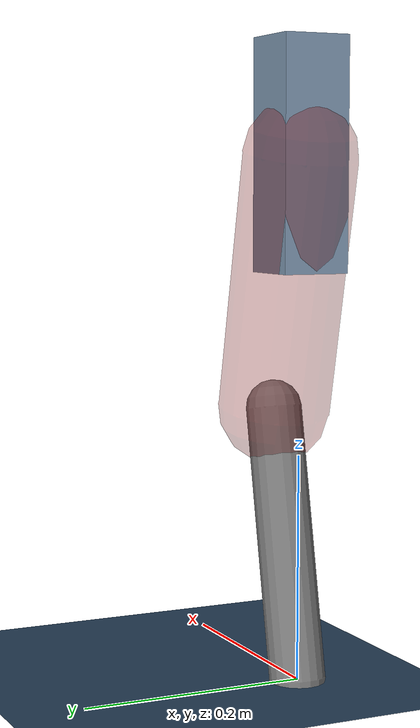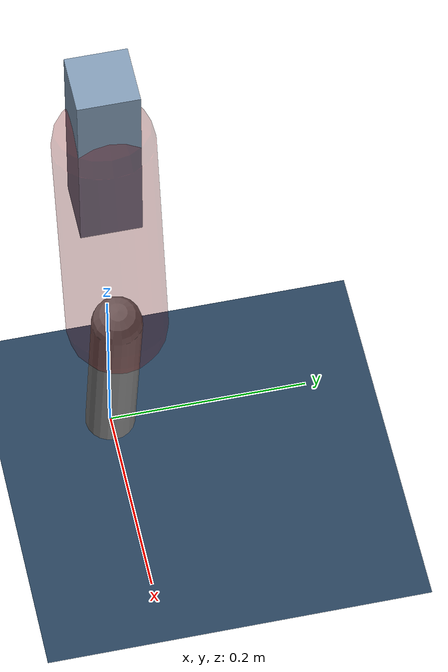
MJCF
<mujoco model="Hopper2D">
	<compiler inertiafromgeom="true" angle="radian" />
	<option timestep="0.001" integrator="implicit" cone="elliptic" solver="Newton" tolerance="1e-10" />

	<default>
		<geom contype="1" conaffinity="1" condim="3" friction="2 0.005 0.0001" solref="0.005 1" />
		<joint limited="true" damping="0.1" />
	</default>

	<asset>
		<texture name="skybox" type="skybox" builtin="gradient" rgb1=".4 .6 .8" rgb2="0 0 0" width="800" height="800" />
		<texture name="grid" type="2d" builtin="checker" rgb1=".1 .2 .3" rgb2=".2 .3 .4" width="300" height="300" mark="edge" markrgb=".2 .3 .4" />
		<material name="ground" texture="grid" texrepeat="1 1" texuniform="true" reflectance="0.1" />
		<material name="leg" rgba="0.5 0.6 0.7 1" />
	</asset>

	<worldbody>

		<geom name="floor" type="plane" size="5 5 0.25" material="ground" />

		<light directional="false" diffuse="0.8 0.8 0.8" specular="0.3 0.3 0.3" pos="0 0 2" dir="0 0 -1" />
		<light mode="targetbodycom" target="base" directional="false" diffuse="0.8 0.8 0.8" specular="0.3 0.3 0.3" pos="0 0 2" dir="0 0 -1" />

		<camera name="fixed" pos="0 -2 1" xyaxes="1 0 0 0 0 1" />
		<camera name="tracking" mode="trackcom" pos="0 -3 1" />

		<body name="root" pos="0 0 0.45905471992279717">
			<joint name="slide_x" type="slide" axis="1 0 0" range="-100 100" />
			<joint name="slide_z" type="slide" axis="0 0 1" range="0 10" />

			<body name="base" pos="0 0 0">
				<geom name="torso" type="box" size="0.03 0.03 0.1" mass="1.947" material="leg" />

				<body name="link1" pos="0 0 0" euler="0 1.3574463496309774 0">
					<joint type="hinge" axis="0 -1 0" pos="0 0 0" name="hinge1" limited="true" range="-3.14 3.14" stiffness="0" damping="0.1" />
					<geom name="thigh" type="capsule" fromto="0 0 0 0.22738745832002144 0 0" size="0.05" rgba="0.5 0 0 0.3" mass="0.7983686458000536" />

					<body name="link2" pos="0.22738745832002144 0 0" euler="0 0.41391591329807537 0">
						<joint type="hinge" axis="0 -1 0" pos="0 0 0" name="hinge2" limited="true" range="-3.14 3.14" stiffness="0" damping="0.1" />
						<geom name="shank" type="capsule" fromto="0 0 0 0.24166726160277574 0 0" size="0.025" mass="0.4356338092822206" />

					</body>
				</body>
			</body>
		</body>
	</worldbody>

	<actuator>
		<motor name="torque1" joint="hinge1" ctrlrange="-13.317944762081684 13.317944762081684" ctrllimited="true" gear="1" />
		<motor name="torque2" joint="hinge2" ctrlrange="-66.50129354116936 66.50129354116936" ctrllimited="true" gear="1" />
	</actuator>
</mujoco>
